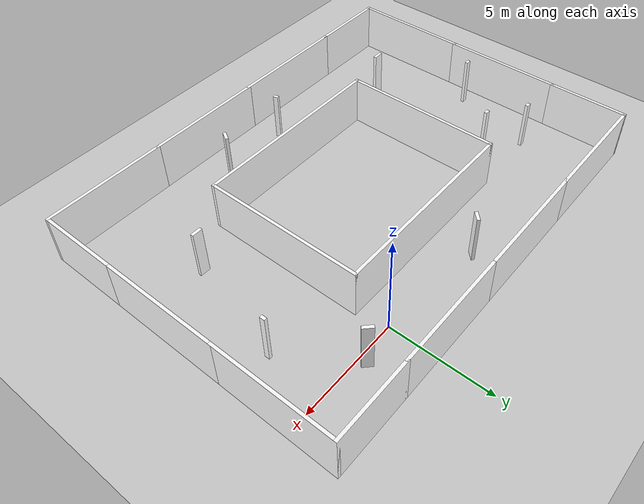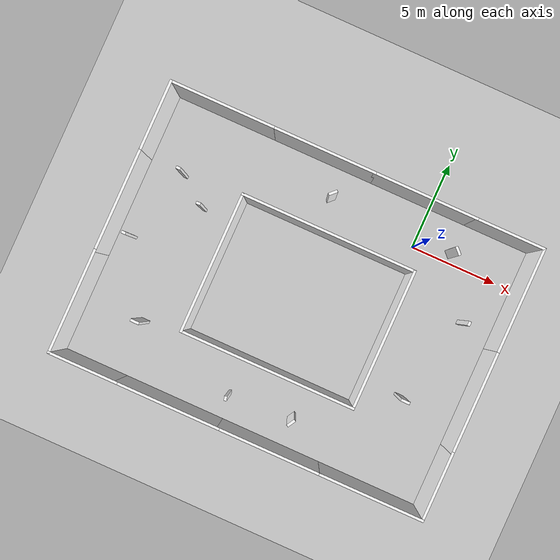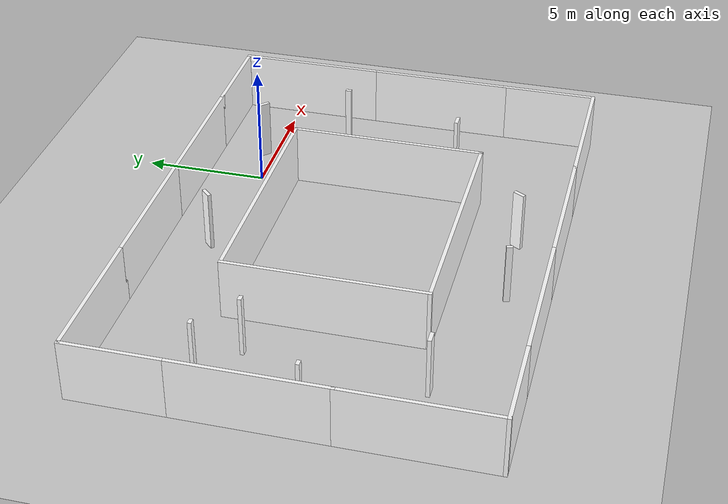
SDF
<sdf version="1.6">
 <world name="default">
  <light name="sun" type="directional">
   <pose>0 0 10 0 -0 0</pose>
   <diffuse>0.8 0.8 0.8 1</diffuse>
   <specular>0.2 0.2 0.2 1</specular>
   <attenuation>
    <range>1000</range>
    <constant>0.9</constant>
    <linear>0.01</linear>
    <quadratic>0.001</quadratic>
   </attenuation>
   <direction>-0.5 0.1 -0.9</direction>
  </light>
  <model name="ground_plane">
   <static>1</static>
   <link name="link">
    <collision name="collision">
     <geometry><plane><normal>0 0 1</normal><size>100 100</size></plane></geometry>
     <surface>
      <contact><collide_bitmask>65535</collide_bitmask></contact>
      <friction><ode><mu>100</mu><mu2>50</mu2></ode></friction>
     </surface>
    </collision>
    <visual name="visual">
     <cast_shadows>0</cast_shadows>
     <geometry><plane><normal>0 0 1</normal><size>100 100</size></plane></geometry>
     <material>
      <script><uri>file://media/materials/scripts/gazebo.material</uri><name>Gazebo/Grey</name></script>
     </material>
    </visual>
   </link>
  </model>
  <gravity>0 0 -9.8</gravity>
  <magnetic_field>6e-06 2.3e-05 -4.2e-05</magnetic_field>
  <atmosphere type="adiabatic"/>
  <physics name="default_physics" default="0" type="ode">
   <max_step_size>0.001</max_step_size>
   <real_time_factor>1</real_time_factor>
   <real_time_update_rate>1000</real_time_update_rate>
  </physics>
  <scene><ambient>0.4 0.4 0.4 1</ambient><background>0.7 0.7 0.7 1</background><shadows>1</shadows></scene>
  <audio><device>default</device></audio>
  <spherical_coordinates>
   <surface_model>EARTH_WGS84</surface_model>
   <latitude_deg>0</latitude_deg>
   <longitude_deg>0</longitude_deg>
   <elevation>0</elevation>
   <heading_deg>0</heading_deg>
  </spherical_coordinates>
  <model name="vlsam6">
   <pose>-4.68665 -5.40161 0 0 -0 0</pose>
   <link name="Wall_12">
    <collision name="Wall_12_Collision">
     <geometry><box><size>10 0.15 2.5</size></box></geometry>
     <pose>0 0 1.25 0 -0 0</pose>
    </collision>
    <visual name="Wall_12_Visual">
     <pose>0 0 1.25 0 -0 0</pose>
     <geometry><box><size>10 0.15 2.5</size></box></geometry>
     <material>
      <script><uri>file://media/materials/scripts/gazebo.material</uri><name>Gazebo/image02</name></script>
      <ambient>1 1 1 1</ambient>
     </material>
     <meta><layer>0</layer></meta>
    </visual>
    <pose>0.075 3.925 0 0 -0 0</pose>
   </link>
   <link name="Wall_13">
    <collision name="Wall_13_Collision">
     <geometry><box><size>8 0.15 2.5</size></box></geometry>
     <pose>0 0 1.25 0 -0 0</pose>
    </collision>
    <visual name="Wall_13_Visual">
     <pose>0 0 1.25 0 -0 0</pose>
     <geometry><box><size>8 0.15 2.5</size></box></geometry>
     <material>
      <script><uri>file://media/materials/scripts/gazebo.material</uri><name>Gazebo/image03</name></script>
      <ambient>1 1 1 1</ambient>
     </material>
     <meta><layer>0</layer></meta>
    </visual>
    <pose>5 0 0 0 -0 -1.5708</pose>
   </link>
   <link name="Wall_14">
    <collision name="Wall_14_Collision">
     <geometry><box><size>10 0.15 2.5</size></box></geometry>
     <pose>0 0 1.25 0 -0 0</pose>
    </collision>
    <visual name="Wall_14_Visual">
     <pose>0 0 1.25 0 -0 0</pose>
     <geometry><box><size>10 0.15 2.5</size></box></geometry>
     <material>
      <script><uri>file://media/materials/scripts/gazebo.material</uri><name>Gazebo/image04</name></script>
      <ambient>1 1 1 1</ambient>
     </material>
     <meta><layer>0</layer></meta>
    </visual>
    <pose>0.075 -3.925 0 0 -0 3.14159</pose>
   </link>
   <link name="Wall_15">
    <collision name="Wall_15_Collision">
     <geometry><box><size>8 0.15 2.5</size></box></geometry>
     <pose>0 0 1.25 0 -0 0</pose>
    </collision>
    <visual name="Wall_15_Visual">
     <pose>0 0 1.25 0 -0 0</pose>
     <geometry><box><size>8 0.15 2.5</size></box></geometry>
     <material>
      <script><uri>file://media/materials/scripts/gazebo.material</uri><name>Gazebo/image05</name></script>
      <ambient>1 1 1 1</ambient>
     </material>
     <meta><layer>0</layer></meta>
    </visual>
    <pose>-4.85 0 0 0 -0 1.5708</pose>
   </link>
   <link name="Wall_34">
    <collision name="Wall_34_Collision">
     <geometry><box><size>4 0.15 2.5</size></box></geometry>
     <pose>0 0 1.25 0 -0 0</pose>
    </collision>
    <visual name="Wall_34_Visual">
     <pose>0 0 1.25 0 -0 0</pose>
     <geometry><box><size>4 0.15 2.5</size></box></geometry>
     <material>
      <script><uri>file://media/materials/scripts/gazebo.material</uri><name>Gazebo/image06</name></script>
      <ambient>1 1 1 1</ambient>
     </material>
     <meta><layer>0</layer></meta>
    </visual>
    <pose>-10.7 5.85 0 0 -0 1.5708</pose>
   </link>
   <link name="Wall_35">
    <collision name="Wall_35_Collision">
     <geometry><box><size>6 0.15 2.5</size></box></geometry>
     <pose>0 0 1.25 0 -0 0</pose>
    </collision>
    <visual name="Wall_35_Visual">
     <pose>0 0 1.25 0 -0 0</pose>
     <geometry><box><size>6 0.15 2.5</size></box></geometry>
     <material>
      <script><uri>file://media/materials/scripts/gazebo.material</uri><name>Gazebo/image07</name></script>
      <ambient>1 1 1 1</ambient>
     </material>
     <meta><layer>0</layer></meta>
    </visual>
    <pose>-7.775 7.775 0 0 -0 0</pose>
   </link>
   <link name="Wall_36">
    <collision name="Wall_36_Collision">
     <geometry><box><size>6 0.15 2.5</size></box></geometry>
     <pose>0 0 1.25 0 -0 0</pose>
    </collision>
    <visual name="Wall_36_Visual">
     <pose>0 0 1.25 0 -0 0</pose>
     <geometry><box><size>6 0.15 2.5</size></box></geometry>
     <material>
      <script><uri>file://media/materials/scripts/gazebo.material</uri><name>Gazebo/image08</name></script>
      <ambient>1 1 1 1</ambient>
     </material>
     <meta><layer>0</layer></meta>
    </visual>
    <pose>-1.925 7.775 0 0 -0 0</pose>
   </link>
   <link name="Wall_37">
    <collision name="Wall_37_Collision">
     <geometry><box><size>6 0.15 2.5</size></box></geometry>
     <pose>0 0 1.25 0 -0 0</pose>
    </collision>
    <visual name="Wall_37_Visual">
     <pose>0 0 1.25 0 -0 0</pose>
     <geometry><box><size>6 0.15 2.5</size></box></geometry>
     <material>
      <script><uri>file://media/materials/scripts/gazebo.material</uri><name>Gazebo/image09</name></script>
      <ambient>1 1 1 1</ambient>
     </material>
     <meta><layer>0</layer></meta>
    </visual>
    <pose>3.925 7.775 0 0 -0 0</pose>
   </link>
   <link name="Wall_38">
    <collision name="Wall_38_Collision">
     <geometry><box><size>4 0.15 2.5</size></box></geometry>
     <pose>0 0 1.25 0 -0 0</pose>
    </collision>
    <visual name="Wall_38_Visual">
     <pose>0 0 1.25 0 -0 0</pose>
     <geometry><box><size>4 0.15 2.5</size></box></geometry>
     <material>
      <script><uri>file://media/materials/scripts/gazebo.material</uri><name>Gazebo/image10</name></script>
      <ambient>1 1 1 1</ambient>
     </material>
     <meta><layer>0</layer></meta>
    </visual>
    <pose>8.775 7.775 0 0 -0 0</pose>
   </link>
   <link name="Wall_39">
    <collision name="Wall_39_Collision">
     <geometry><box><size>6 0.15 2.5</size></box></geometry>
     <pose>0 0 1.25 0 -0 0</pose>
    </collision>
    <visual name="Wall_39_Visual">
     <pose>0 0 1.25 0 -0 0</pose>
     <geometry><box><size>6 0.15 2.5</size></box></geometry>
     <material>
      <script><uri>file://media/materials/scripts/gazebo.material</uri><name>Gazebo/image11</name></script>
      <ambient>1 1 1 1</ambient>
     </material>
     <meta><layer>0</layer></meta>
    </visual>
    <pose>10.7 4.85 0 0 -0 -1.5708</pose>
   </link>
   <link name="Wall_40">
    <collision name="Wall_40_Collision">
     <geometry><box><size>6 0.15 2.5</size></box></geometry>
     <pose>0 0 1.25 0 -0 0</pose>
    </collision>
    <visual name="Wall_40_Visual">
     <pose>0 0 1.25 0 -0 0</pose>
     <geometry><box><size>6 0.15 2.5</size></box></geometry>
     <material>
      <script><uri>file://media/materials/scripts/gazebo.material</uri><name>Gazebo/image12</name></script>
      <ambient>1 1 1 1</ambient>
     </material>
     <meta><layer>0</layer></meta>
    </visual>
    <pose>10.7 -1 0 0 -0 -1.5708</pose>
   </link>
   <link name="Wall_42">
    <collision name="Wall_42_Collision">
     <geometry><box><size>4 0.15 2.5</size></box></geometry>
     <pose>0 0 1.25 0 -0 0</pose>
    </collision>
    <visual name="Wall_42_Visual">
     <pose>0 0 1.25 0 -0 0</pose>
     <geometry><box><size>4 0.15 2.5</size></box></geometry>
     <material>
      <script><uri>file://media/materials/scripts/gazebo.material</uri><name>Gazebo/image13</name></script>
      <ambient>1 1 1 1</ambient>
     </material>
     <meta><layer>0</layer></meta>
    </visual>
    <pose>10.7 -5.85 0 0 -0 -1.5708</pose>
   </link>
   <link name="Wall_43">
    <collision name="Wall_43_Collision">
     <geometry><box><size>6 0.15 2.5</size></box></geometry>
     <pose>0 0 1.25 0 -0 0</pose>
    </collision>
    <visual name="Wall_43_Visual">
     <pose>0 0 1.25 0 -0 0</pose>
     <geometry><box><size>6 0.15 2.5</size></box></geometry>
     <material>
      <script><uri>file://media/materials/scripts/gazebo.material</uri><name>Gazebo/image14</name></script>
      <ambient>1 1 1 1</ambient>
     </material>
     <meta><layer>0</layer></meta>
    </visual>
    <pose>7.775 -7.775 0 0 -0 3.14159</pose>
   </link>
   <link name="Wall_44">
    <collision name="Wall_44_Collision">
     <geometry><box><size>6 0.15 2.5</size></box></geometry>
     <pose>0 0 1.25 0 -0 0</pose>
    </collision>
    <visual name="Wall_44_Visual">
     <pose>0 0 1.25 0 -0 0</pose>
     <geometry><box><size>6 0.15 2.5</size></box></geometry>
     <material>
      <script><uri>file://media/materials/scripts/gazebo.material</uri><name>Gazebo/image15</name></script>
      <ambient>1 1 1 1</ambient>
     </material>
     <meta><layer>0</layer></meta>
    </visual>
    <pose>1.925 -7.775 0 0 -0 3.14159</pose>
   </link>
   <link name="Wall_45">
    <collision name="Wall_45_Collision">
     <geometry><box><size>6 0.15 2.5</size></box></geometry>
     <pose>0 0 1.25 0 -0 0</pose>
    </collision>
    <visual name="Wall_45_Visual">
     <pose>0 0 1.25 0 -0 0</pose>
     <geometry><box><size>6 0.15 2.5</size></box></geometry>
     <material>
      <script><uri>file://media/materials/scripts/gazebo.material</uri><name>Gazebo/image16</name></script>
      <ambient>1 1 1 1</ambient>
     </material>
     <meta><layer>0</layer></meta>
    </visual>
    <pose>-3.925 -7.775 0 0 -0 3.14159</pose>
   </link>
   <link name="Wall_46">
    <collision name="Wall_46_Collision">
     <geometry><box><size>4 0.15 2.5</size></box></geometry>
     <pose>0 0 1.25 0 -0 0</pose>
    </collision>
    <visual name="Wall_46_Visual">
     <pose>0 0 1.25 0 -0 0</pose>
     <geometry><box><size>4 0.15 2.5</size></box></geometry>
     <material>
      <script><uri>file://media/materials/scripts/gazebo.material</uri><name>Gazebo/image17</name></script>
      <ambient>1 1 1 1</ambient>
     </material>
     <meta><layer>0</layer></meta>
    </visual>
    <pose>-8.775 -7.775 0 0 -0 3.14159</pose>
   </link>
   <link name="Wall_47">
    <collision name="Wall_47_Collision">
     <geometry><box><size>6 0.15 2.5</size></box></geometry>
     <pose>0 0 1.25 0 -0 0</pose>
    </collision>
    <visual name="Wall_47_Visual">
     <pose>0 0 1.25 0 -0 0</pose>
     <geometry><box><size>6 0.15 2.5</size></box></geometry>
     <material>
      <script><uri>file://media/materials/scripts/gazebo.material</uri><name>Gazebo/image18</name></script>
      <ambient>1 1 1 1</ambient>
     </material>
     <meta><layer>0</layer></meta>
    </visual>
    <pose>-10.7 -4.85 0 0 -0 1.5708</pose>
   </link>
   <link name="Wall_48">
    <collision name="Wall_48_Collision">
     <geometry><box><size>6 0.15 2.5</size></box></geometry>
     <pose>0 0 1.25 0 -0 0</pose>
    </collision>
    <visual name="Wall_48_Visual">
     <pose>0 0 1.25 0 -0 0</pose>
     <geometry><box><size>6 0.15 2.5</size></box></geometry>
     <material>
      <script><uri>file://media/materials/scripts/gazebo.material</uri><name>Gazebo/image19</name></script>
      <ambient>1 1 1 1</ambient>
     </material>
     <meta><layer>0</layer></meta>
    </visual>
    <pose>-10.7 1 0 0 -0 1.5708</pose>
   </link>
   <link name="Wall_54">
    <collision name="Wall_54_Collision">
     <geometry><box><size>0.25 0.15 2.5</size></box></geometry>
     <pose>0 0 1.25 0 -0 0</pose>
    </collision>
    <visual name="Wall_54_Visual">
     <pose>0 0 1.25 0 -0 0</pose>
     <geometry><box><size>0.25 0.15 2.5</size></box></geometry>
     <material>
      <script><uri>file://media/materials/scripts/gazebo.material</uri><name>Gazebo/image20</name></script>
      <ambient>1 1 1 1</ambient>
     </material>
     <meta><layer>0</layer></meta>
    </visual>
    <pose>-8.48758 3.79182 0 0 -0 0</pose>
   </link>
   <link name="Wall_56">
    <collision name="Wall_56_Collision">
     <geometry><box><size>0.25 0.15 2.5</size></box></geometry>
     <pose>0 0 1.25 0 -0 0</pose>
    </collision>
    <visual name="Wall_56_Visual">
     <pose>0 0 1.25 0 -0 0</pose>
     <geometry><box><size>0.25 0.15 2.5</size></box></geometry>
     <material>
      <script><uri>file://media/materials/scripts/gazebo.material</uri><name>Gazebo/image21</name></script>
      <ambient>1 1 1 1</ambient>
     </material>
     <meta><layer>0</layer></meta>
    </visual>
    <pose>-6.77465 2.5343 0 0 -0 0</pose>
   </link>
   <link name="Wall_58">
    <collision name="Wall_58_Collision">
     <geometry><box><size>0.25 0.15 2.5</size></box></geometry>
     <pose>0 0 1.25 0 -0 0</pose>
    </collision>
    <visual name="Wall_58_Visual">
     <pose>0 0 1.25 0 -0 0</pose>
     <geometry><box><size>0.25 0.15 2.5</size></box></geometry>
     <material>
      <script><uri>file://media/materials/scripts/gazebo.material</uri><name>Gazebo/image22</name></script>
      <ambient>1 1 1 1</ambient>
     </material>
     <meta><layer>0</layer></meta>
    </visual>
    <pose>-9.71002 -0.456921 0 0 -0 0</pose>
   </link>
   <link name="Wall_60">
    <collision name="Wall_60_Collision">
     <geometry><box><size>0.5 0.15 2.5</size></box></geometry>
     <pose>0 0 1.25 0 -0 0</pose>
    </collision>
    <visual name="Wall_60_Visual">
     <pose>0 0 1.25 0 -0 0</pose>
     <geometry><box><size>0.5 0.15 2.5</size></box></geometry>
     <material>
      <script><uri>file://media/materials/scripts/gazebo.material</uri><name>Gazebo/image23</name></script>
      <ambient>1 1 1 1</ambient>
     </material>
     <meta><layer>0</layer></meta>
    </visual>
    <pose>-7.2609 -4.46596 0 0 -0 0</pose>
   </link>
   <link name="Wall_62">
    <collision name="Wall_62_Collision">
     <geometry><box><size>0.5 0.15 2.5</size></box></geometry>
     <pose>0 0 1.25 0 -0 0</pose>
    </collision>
    <visual name="Wall_62_Visual">
     <pose>0 0 1.25 0 -0 0</pose>
     <geometry><box><size>0.5 0.15 2.5</size></box></geometry>
     <material>
      <script><uri>file://media/materials/scripts/gazebo.material</uri><name>Gazebo/image24</name></script>
      <ambient>1 1 1 1</ambient>
     </material>
     <meta><layer>0</layer></meta>
    </visual>
    <pose>-0.582308 5.92546 0 0 -0 0.785398</pose>
   </link>
   <link name="Wall_65">
    <collision name="Wall_65_Collision">
     <geometry><box><size>0.5 0.15 2.5</size></box></geometry>
     <pose>0 0 1.25 0 -0 0</pose>
    </collision>
    <visual name="Wall_65_Visual">
     <pose>0 0 1.25 0 -0 0</pose>
     <geometry><box><size>0.5 0.15 2.5</size></box></geometry>
     <material>
      <script><uri>file://media/materials/scripts/gazebo.material</uri><name>Gazebo/image25</name></script>
      <ambient>1 1 1 1</ambient>
     </material>
     <meta><layer>0</layer></meta>
    </visual>
    <pose>6.62635 5.83757 0 0 -0 -0.785398</pose>
   </link>
   <link name="Wall_67">
    <collision name="Wall_67_Collision">
     <geometry><box><size>0.25 0.15 2.5</size></box></geometry>
     <pose>0 0 1.25 0 -0 0</pose>
    </collision>
    <visual name="Wall_67_Visual">
     <pose>0 0 1.25 0 -0 0</pose>
     <geometry><box><size>0.25 0.15 2.5</size></box></geometry>
     <material>
      <script><uri>file://media/materials/scripts/gazebo.material</uri><name>Gazebo/image26</name></script>
      <ambient>1 1 1 1</ambient>
     </material>
     <meta><layer>0</layer></meta>
    </visual>
    <pose>8.71042 2.60649 0 0 -0 1.5708</pose>
   </link>
   <link name="Wall_71">
    <collision name="Wall_71_Collision">
     <geometry><box><size>0.5 0.15 2.5</size></box></geometry>
     <pose>0 0 1.25 0 -0 0</pose>
    </collision>
    <visual name="Wall_71_Visual">
     <pose>0 0 1.25 0 -0 0</pose>
     <geometry><box><size>0.5 0.15 2.5</size></box></geometry>
     <material>
      <script><uri>file://media/materials/scripts/gazebo.material</uri><name>Gazebo/image27</name></script>
      <ambient>1 1 1 1</ambient>
     </material>
     <meta><layer>0</layer></meta>
    </visual>
    <pose>7.34261 -2.47095 0 0 -0 0</pose>
   </link>
   <link name="Wall_73">
    <collision name="Wall_73_Collision">
     <geometry><box><size>0.25 0.15 2.5</size></box></geometry>
     <pose>0 0 1.25 0 -0 0</pose>
    </collision>
    <visual name="Wall_73_Visual">
     <pose>0 0 1.25 0 -0 0</pose>
     <geometry><box><size>0.25 0.15 2.5</size></box></geometry>
     <material>
      <script><uri>file://media/materials/scripts/gazebo.material</uri><name>Gazebo/image28</name></script>
      <ambient>1 1 1 1</ambient>
     </material>
     <meta><layer>0</layer></meta>
    </visual>
    <pose>-1.29476 -6.17395 0 0 -0 -1.309</pose>
   </link>
   <link name="Wall_75">
    <collision name="Wall_75_Collision">
     <geometry><box><size>0.5 0.15 2.5</size></box></geometry>
     <pose>0 0 1.25 0 -0 0</pose>
    </collision>
    <visual name="Wall_75_Visual">
     <pose>0 0 1.25 0 -0 0</pose>
     <geometry><box><size>0.5 0.15 2.5</size></box></geometry>
     <material>
      <script><uri>file://media/materials/scripts/gazebo.material</uri><name>Gazebo/image29</name></script>
      <ambient>1 1 1 1</ambient>
     </material>
     <meta><layer>0</layer></meta>
    </visual>
    <pose>2.35886 -5.94351 0 0 -0 1.0472</pose>
   </link>
   <static>1</static>
  </model>
 </world>
</sdf>
